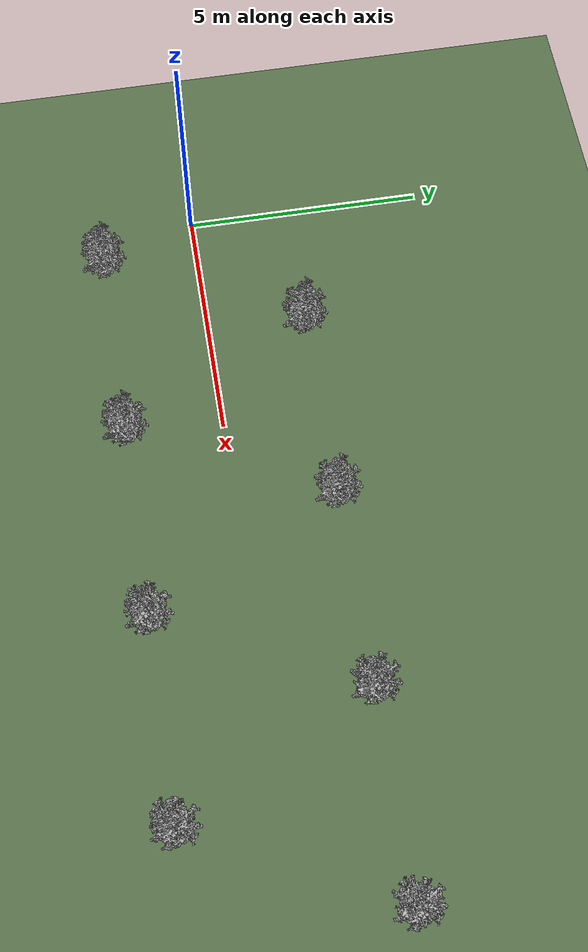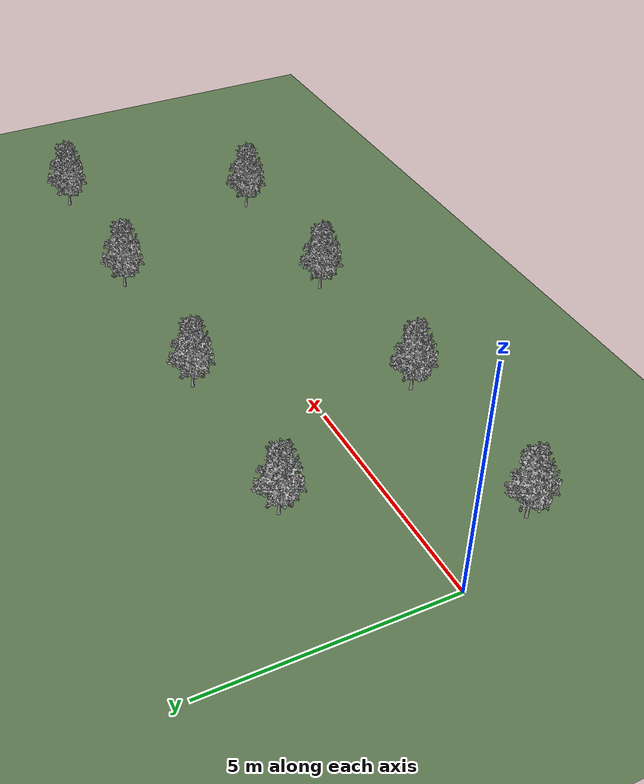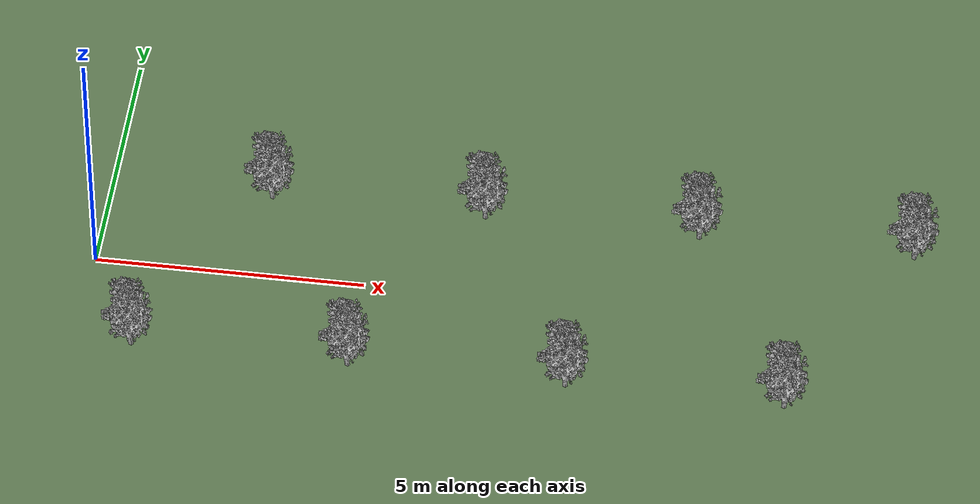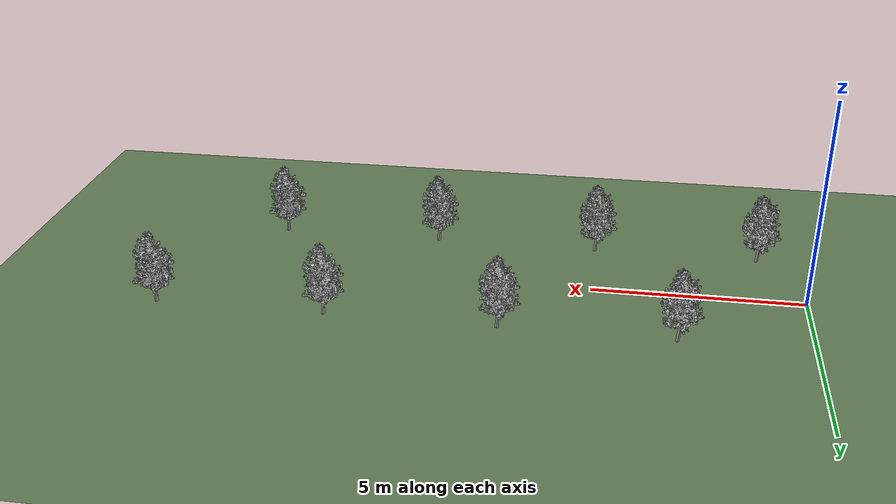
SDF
<?xml version="1.0"?>
<sdf version="1.6">
  <world name="orchard">
    <!-- GUI-only spray rays subscribe to the simulated relay.  They are not
         spawned into gzserver, so C10 images remain free of visual overlays. -->
    <gui fullscreen="0">
      <plugin name="wvcsc_spray_visual" filename="libwvcsc_spray_visual_plugin.so"/>
    </gui>
    <!-- 仿真状态插件 -->
    <plugin name="gazebo_ros_state" filename="libgazebo_ros_state.so">
      <update_rate>50.0</update_rate>
    </plugin>

    <!-- 全局光照 -->
    <light name="sun" type="directional">
      <cast_shadows>true</cast_shadows>
      <pose>0 0 10 0 0 0</pose>
      <diffuse>0.8 0.8 0.8 1</diffuse>
      <specular>0.2 0.2 0.2 1</specular>
      <direction>-0.5 0.1 -0.9</direction>
    </light>

    <!-- 地面平面 -->
    <model name="ground_plane">
      <static>true</static>
      <link name="link">
        <collision name="collision">
          <geometry>
            <plane>
              <normal>0 0 1</normal>
              <size>100 100</size>
            </plane>
          </geometry>
        </collision>
        <visual name="visual">
          <geometry>
            <plane>
              <normal>0 0 1</normal>
              <size>100 100</size>
            </plane>
          </geometry>
          <material>
            <ambient>0.35 0.45 0.30 1</ambient>
            <diffuse>0.35 0.45 0.30 1</diffuse>
          </material>
        </visual>
      </link>
    </model>

    <!-- 物理引擎配置 -->
    <physics type="ode">
      <real_time_update_rate>1000</real_time_update_rate>
      <max_step_size>0.001</max_step_size>
    </physics>

    <!-- 左侧果树列：沿道路 X 轴布置，株距 4 m；包含模拟目标 (3, 2)。 -->
    <include>
      <uri>model://apple_tree</uri>
      <name>left_tree_01</name>
      <pose>3 2 0 0 0 0</pose>
    </include>
    <include>
      <uri>model://apple_tree</uri>
      <name>left_tree_02</name>
      <pose>7 2 0 0 0 0</pose>
    </include>
    <include>
      <uri>model://apple_tree</uri>
      <name>left_tree_03</name>
      <pose>11 2 0 0 0 0</pose>
    </include>
    <include>
      <uri>model://apple_tree</uri>
      <name>left_tree_04</name>
      <pose>15 2 0 0 0 0</pose>
    </include>

    <!-- 右侧果树列：沿道路 X 轴布置，株距 4 m；包含模拟目标 (5, -2)。 -->
    <include>
      <uri>model://apple_tree</uri>
      <name>right_tree_01</name>
      <pose>1 -2 0 0 0 0</pose>
    </include>
    <include>
      <uri>model://apple_tree</uri>
      <name>right_tree_02</name>
      <pose>5 -2 0 0 0 0</pose>
    </include>
    <include>
      <uri>model://apple_tree</uri>
      <name>right_tree_03</name>
      <pose>9 -2 0 0 0 0</pose>
    </include>
    <include>
      <uri>model://apple_tree</uri>
      <name>right_tree_04</name>
      <pose>13 -2 0 0 0 0</pose>
    </include>

  </world>
</sdf>

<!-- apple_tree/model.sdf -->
<sdf version="1.6">
  <model name="apple_tree">
    <static>true</static>
    <link name="tree">
      <collision name="trunk_collision">
        <pose>0 0 0.591237 0 0 0</pose>
        <geometry>
          <cylinder>
            <radius>0.197079</radius>
            <length>1.182473</length>
          </cylinder>
        </geometry>
      </collision>
      <visual name="tree_visual">
        <geometry>
          <mesh>
            <uri>model://apple_tree/meshes/apple_tree.obj</uri>
            <scale>0.788316 0.788316 0.788316</scale>
          </mesh>
        </geometry>
      </visual>
      <visual name="apples_visual">
        <geometry>
          <mesh>
            <uri>model://apple_tree/meshes/apple_tree_apples.obj</uri>
            <scale>0.788316 0.788316 0.788316</scale>
          </mesh>
        </geometry>
      </visual>
    </link>
  </model>
</sdf>
